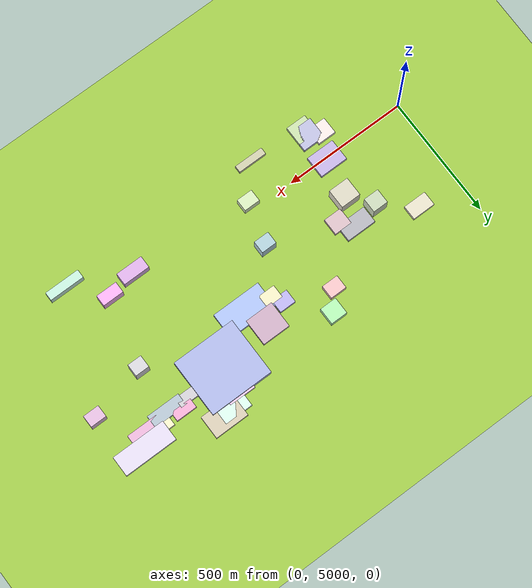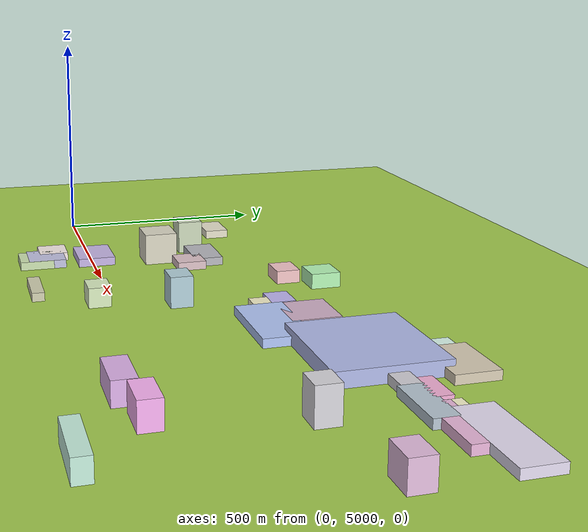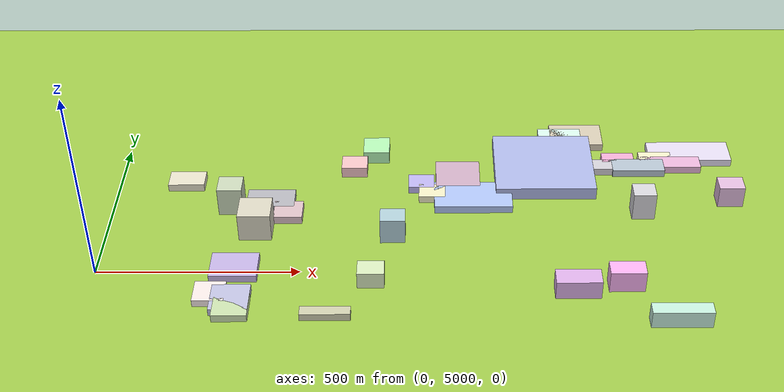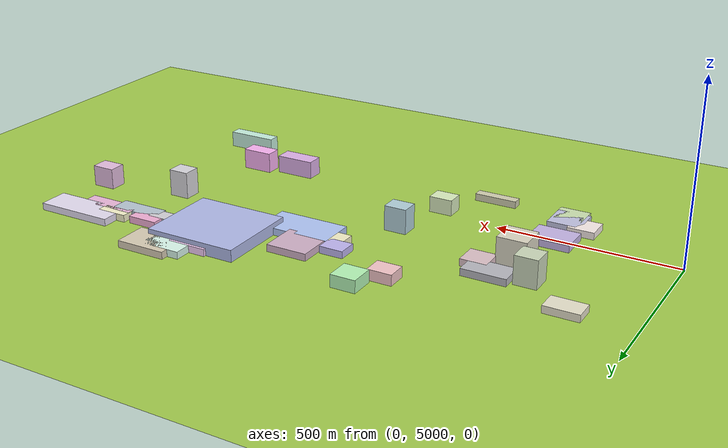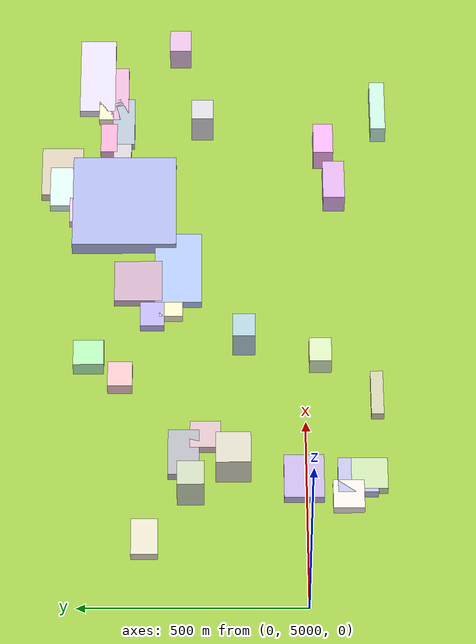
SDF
<sdf version="1.9">
 <world name="city_map">
  <model name="ground_plane">
   <static>1</static>
   <link name="link">
    <collision name="collision">
     <geometry><plane><normal>0 0 1</normal><size>11000 11000</size></plane></geometry>
    </collision>
    <visual name="visual">
     <geometry><plane><normal>0 0 1</normal><size>11000 11000</size></plane></geometry>
     <material>
      <ambient>0.551 0.712 0.210 1</ambient>
      <diffuse>0.651 0.812 0.310 1</diffuse>
      <specular>0.1 0.1 0.05 1</specular>
     </material>
    </visual>
   </link>
  </model>
  <model name="building_988046824">
   <static>1</static>
   <pose>1118.620609459311 5408.341910221481 16.624622849178063 0 0 0</pose>
   <link name="link">
    <collision name="collision">
     <geometry><box><size>261.7244489842803 237.71760000018105 33.24924569835613</size></box></geometry>
    </collision>
    <visual name="visual">
     <cast_shadows>false</cast_shadows>
     <geometry><box><size>261.7244489842803 237.71760000018105 33.24924569835613</size></box></geometry>
     <material>
      <ambient>0.604 0.640 0.826 1</ambient>
      <diffuse>0.704 0.740 0.926 1</diffuse>
      <specular>0.211 0.222 0.278 1</specular>
      <emissive>0.01 0.01 0.01 1</emissive>
     </material>
    </visual>
   </link>
  </model>
  <model name="building_383699546">
   <static>1</static>
   <pose>927.8993489632977 5284.29664269175 10.0 0 0 0</pose>
   <link name="link">
    <collision name="collision">
     <geometry><box><size>201.5623289126177 106.03830000012238 20</size></box></geometry>
    </collision>
    <visual name="visual">
     <cast_shadows>false</cast_shadows>
     <geometry><box><size>201.5623289126177 106.03830000012238 20</size></box></geometry>
     <material>
      <ambient>0.606 0.689 0.881 1</ambient>
      <diffuse>0.706 0.789 0.981 1</diffuse>
      <specular>0.212 0.237 0.294 1</specular>
      <emissive>0.01 0.01 0.01 1</emissive>
     </material>
    </visual>
   </link>
  </model>
  <model name="building_515084542">
   <static>1</static>
   <pose>1516.5815780573898 5474.953385485059 10.0 0 0 0</pose>
   <link name="link">
    <collision name="collision">
     <geometry><box><size>220.8233999999294 82.75419643831687 20</size></box></geometry>
    </collision>
    <visual name="visual">
     <cast_shadows>false</cast_shadows>
     <geometry><box><size>220.8233999999294 82.75419643831687 20</size></box></geometry>
     <material>
      <ambient>0.816 0.785 0.867 1</ambient>
      <diffuse>0.916 0.885 0.967 1</diffuse>
      <specular>0.275 0.265 0.290 1</specular>
      <emissive>0.01 0.01 0.01 1</emissive>
     </material>
    </visual>
   </link>
  </model>
  <model name="building_64888461">
   <static>1</static>
   <pose>1217.999465446837 5553.1395003354555 10.0 0 0 0</pose>
   <link name="link">
    <collision name="collision">
     <geometry><box><size>141.1476000002878 94.76810245106343 20</size></box></geometry>
    </collision>
    <visual name="visual">
     <cast_shadows>false</cast_shadows>
     <geometry><box><size>141.1476000002878 94.76810245106343 20</size></box></geometry>
     <material>
      <ambient>0.763 0.717 0.627 1</ambient>
      <diffuse>0.863 0.817 0.727 1</diffuse>
      <specular>0.259 0.245 0.218 1</specular>
      <emissive>0.01 0.01 0.01 1</emissive>
     </material>
    </visual>
   </link>
  </model>
  <model name="building_899360041">
   <static>1</static>
   <pose>889.5267928917383 5374.45685153867 10.0 0 0 0</pose>
   <link name="link">
    <collision name="collision">
     <geometry><box><size>115.60649999994155 108.24490099768522 20</size></box></geometry>
    </collision>
    <visual name="visual">
     <cast_shadows>false</cast_shadows>
     <geometry><box><size>115.60649999994155 108.24490099768522 20</size></box></geometry>
     <material>
      <ambient>0.729 0.605 0.692 1</ambient>
      <diffuse>0.829 0.705 0.792 1</diffuse>
      <specular>0.249 0.211 0.238 1</specular>
      <emissive>0.01 0.01 0.01 1</emissive>
     </material>
    </visual>
   </link>
  </model>
  <model name="building_698523160">
   <static>1</static>
   <pose>338.582515647285 5006.787697867238 10.0 0 0 0</pose>
   <link name="link">
    <collision name="collision">
     <geometry><box><size>116.1002728291283 87.97859999965851 20</size></box></geometry>
    </collision>
    <visual name="visual">
     <cast_shadows>false</cast_shadows>
     <geometry><box><size>116.1002728291283 87.97859999965851 20</size></box></geometry>
     <material>
      <ambient>0.686 0.622 0.814 1</ambient>
      <diffuse>0.786 0.722 0.914 1</diffuse>
      <specular>0.236 0.217 0.274 1</specular>
      <emissive>0.01 0.01 0.01 1</emissive>
     </material>
    </visual>
   </link>
  </model>
  <model name="building_870610111">
   <static>1</static>
   <pose>1172.8414720907956 5541.666942231685 10.0 0 0 0</pose>
   <link name="link">
    <collision name="collision">
     <geometry><box><size>116.150399999988 77.59167386466402 20</size></box></geometry>
    </collision>
    <visual name="visual">
     <cast_shadows>false</cast_shadows>
     <geometry><box><size>116.150399999988 77.59167386466402 20</size></box></geometry>
     <material>
      <ambient>0.776 0.894 0.845 1</ambient>
      <diffuse>0.876 0.994 0.945 1</diffuse>
      <specular>0.263 0.298 0.283 1</specular>
      <emissive>0.01 0.01 0.01 1</emissive>
     </material>
    </visual>
   </link>
  </model>
  <model name="building_709739822">
   <static>1</static>
   <pose>1121.7715492436378 5495.49829377158 10.0 0 0 0</pose>
   <link name="link">
    <collision name="collision">
     <geometry><box><size>110.14530000000633 78.11852953853968 20</size></box></geometry>
    </collision>
    <visual name="visual">
     <cast_shadows>false</cast_shadows>
     <geometry><box><size>110.14530000000633 78.11852953853968 20</size></box></geometry>
     <material>
      <ambient>0.882 0.732 0.898 1</ambient>
      <diffuse>0.982 0.832 0.998 1</diffuse>
      <specular>0.295 0.250 0.299 1</specular>
      <emissive>0.01 0.01 0.01 1</emissive>
     </material>
    </visual>
   </link>
  </model>
  <model name="building_130660668">
   <static>1</static>
   <pose>404.59170274582743 5270.571614620403 10.0 0 0 0</pose>
   <link name="link">
    <collision name="collision">
     <geometry><box><size>122.66524421167394 69.18630000009784 20</size></box></geometry>
    </collision>
    <visual name="visual">
     <cast_shadows>false</cast_shadows>
     <geometry><box><size>122.66524421167394 69.18630000009784 20</size></box></geometry>
     <material>
      <ambient>0.630 0.629 0.658 1</ambient>
      <diffuse>0.730 0.729 0.758 1</diffuse>
      <specular>0.219 0.219 0.227 1</specular>
      <emissive>0.01 0.01 0.01 1</emissive>
     </material>
    </visual>
   </link>
  </model>
  <model name="building_795768570">
   <static>1</static>
   <pose>341.0672039774285 4888.616009073335 10.0 0 0 0</pose>
   <link name="link">
    <collision name="collision">
     <geometry><box><size>92.79050602526395 88.10070000029668 20</size></box></geometry>
    </collision>
    <visual name="visual">
     <cast_shadows>false</cast_shadows>
     <geometry><box><size>92.79050602526395 88.10070000029668 20</size></box></geometry>
     <material>
      <ambient>0.671 0.675 0.799 1</ambient>
      <diffuse>0.771 0.775 0.899 1</diffuse>
      <specular>0.231 0.233 0.270 1</specular>
      <emissive>0.01 0.01 0.01 1</emissive>
     </material>
    </visual>
   </link>
  </model>
  <model name="building_860030820">
   <static>1</static>
   <pose>1459.8383465221416 5425.986307773478 10.0 0 0 0</pose>
   <link name="link">
    <collision name="collision">
     <geometry><box><size>160.56150000001423 48.00259607296831 20</size></box></geometry>
    </collision>
    <visual name="visual">
     <cast_shadows>false</cast_shadows>
     <geometry><box><size>160.56150000001423 48.00259607296831 20</size></box></geometry>
     <material>
      <ambient>0.834 0.633 0.772 1</ambient>
      <diffuse>0.934 0.733 0.872 1</diffuse>
      <specular>0.280 0.220 0.262 1</specular>
      <emissive>0.01 0.01 0.01 1</emissive>
     </material>
    </visual>
   </link>
  </model>
  <model name="building_67336968">
   <static>1</static>
   <pose>1372.4841355980489 5412.399711032709 10.0 0 0 0</pose>
   <link name="link">
    <collision name="collision">
     <geometry><box><size>138.32819999967683 50.74193809614689 20</size></box></geometry>
    </collision>
    <visual name="visual">
     <cast_shadows>false</cast_shadows>
     <geometry><box><size>138.32819999967683 50.74193809614689 20</size></box></geometry>
     <material>
      <ambient>0.629 0.687 0.736 1</ambient>
      <diffuse>0.729 0.787 0.836 1</diffuse>
      <specular>0.219 0.236 0.251 1</specular>
      <emissive>0.01 0.01 0.01 1</emissive>
     </material>
    </visual>
   </link>
  </model>
  <model name="building_441883566">
   <static>1</static>
   <pose>345.8690614856086 4863.663867533455 10.0 0 0 0</pose>
   <link name="link">
    <collision name="collision">
     <geometry><box><size>83.92470254477325 79.85340000013963 20</size></box></geometry>
    </collision>
    <visual name="visual">
     <cast_shadows>false</cast_shadows>
     <geometry><box><size>83.92470254477325 79.85340000013963 20</size></box></geometry>
     <material>
      <ambient>0.713 0.799 0.603 1</ambient>
      <diffuse>0.813 0.899 0.703 1</diffuse>
      <specular>0.244 0.270 0.211 1</specular>
      <emissive>0.01 0.01 0.01 1</emissive>
     </material>
    </visual>
   </link>
  </model>
  <model name="building_497718467">
   <static>1</static>
   <pose>377.0329836447336 5161.892737942608 37.13290606609011 0 0 0</pose>
   <link name="link">
    <collision name="collision">
     <geometry><box><size>82.19930396104428 77.55570000010437 74.26581213218022</size></box></geometry>
    </collision>
    <visual name="visual">
     <cast_shadows>false</cast_shadows>
     <geometry><box><size>82.19930396104428 77.55570000010437 74.26581213218022</size></box></geometry>
     <material>
      <ambient>0.775 0.757 0.681 1</ambient>
      <diffuse>0.875 0.857 0.781 1</diffuse>
      <specular>0.262 0.257 0.234 1</specular>
      <emissive>0.01 0.01 0.01 1</emissive>
     </material>
    </visual>
   </link>
  </model>
  <model name="building_162354768">
   <static>1</static>
   <pose>176.04377472699065 5355.333772393632 10.0 0 0 0</pose>
   <link name="link">
    <collision name="collision">
     <geometry><box><size>94.06140000054819 58.31226725260028 20</size></box></geometry>
    </collision>
    <visual name="visual">
     <cast_shadows>false</cast_shadows>
     <geometry><box><size>94.06140000054819 58.31226725260028 20</size></box></geometry>
     <material>
      <ambient>0.820 0.801 0.711 1</ambient>
      <diffuse>0.920 0.901 0.811 1</diffuse>
      <specular>0.276 0.270 0.243 1</specular>
      <emissive>0.01 0.01 0.01 1</emissive>
     </material>
    </visual>
   </link>
  </model>
  <model name="building_765430588">
   <static>1</static>
   <pose>1168.0821147768265 4926.57829271306 25.145361138423006 0 0 0</pose>
   <link name="link">
    <collision name="collision">
     <geometry><box><size>110.00905816763432 49.50600000041305 50.29072227684601</size></box></geometry>
    </collision>
    <visual name="visual">
     <cast_shadows>false</cast_shadows>
     <geometry><box><size>110.00905816763432 49.50600000041305 50.29072227684601</size></box></geometry>
     <material>
      <ambient>0.786 0.610 0.828 1</ambient>
      <diffuse>0.886 0.710 0.928 1</diffuse>
      <specular>0.266 0.213 0.279 1</specular>
      <emissive>0.01 0.01 0.01 1</emissive>
     </material>
    </visual>
   </link>
  </model>
  <model name="building_953731551">
   <static>1</static>
   <pose>290.03977158163474 4909.938748206682 10.0 0 0 0</pose>
   <link name="link">
    <collision name="collision">
     <geometry><box><size>75.24009432819072 68.10959999934596 20</size></box></geometry>
    </collision>
    <visual name="visual">
     <cast_shadows>false</cast_shadows>
     <geometry><box><size>75.24009432819072 68.10959999934596 20</size></box></geometry>
     <material>
      <ambient>0.886 0.836 0.820 1</ambient>
      <diffuse>0.986 0.936 0.920 1</diffuse>
      <specular>0.296 0.281 0.276 1</specular>
      <emissive>0.01 0.01 0.01 1</emissive>
     </material>
    </visual>
   </link>
  </model>
  <model name="building_42363038">
   <static>1</static>
   <pose>1399.0134161133158 4819.778039121408 22.79812197609635 0 0 0</pose>
   <link name="link">
    <collision name="collision">
     <geometry><box><size>144.45749478489194 34.60980000063785 45.5962439521927</size></box></geometry>
    </collision>
    <visual name="visual">
     <cast_shadows>false</cast_shadows>
     <geometry><box><size>144.45749478489194 34.60980000063785 45.5962439521927</size></box></geometry>
     <material>
      <ambient>0.694 0.856 0.785 1</ambient>
      <diffuse>0.794 0.956 0.885 1</diffuse>
      <specular>0.238 0.287 0.266 1</specular>
      <emissive>0.01 0.01 0.01 1</emissive>
     </material>
    </visual>
   </link>
  </model>
  <model name="building_208458895">
   <static>1</static>
   <pose>453.05720298131257 5222.9449514660255 10.0 0 0 0</pose>
   <link name="link">
    <collision name="collision">
     <geometry><box><size>73.09653862622002 67.71000000019711 20</size></box></geometry>
    </collision>
    <visual name="visual">
     <cast_shadows>false</cast_shadows>
     <geometry><box><size>73.09653862622002 67.71000000019711 20</size></box></geometry>
     <material>
      <ambient>0.779 0.670 0.694 1</ambient>
      <diffuse>0.879 0.770 0.794 1</diffuse>
      <specular>0.264 0.231 0.238 1</specular>
      <emissive>0.01 0.01 0.01 1</emissive>
     </material>
    </visual>
   </link>
  </model>
  <model name="building_586630447">
   <static>1</static>
   <pose>671.8520986825114 5483.885228745046 17.488870907383752 0 0 0</pose>
   <link name="link">
    <collision name="collision">
     <geometry><box><size>69.21316812791535 68.45370000021234 34.977741814767505</size></box></geometry>
    </collision>
    <visual name="visual">
     <cast_shadows>false</cast_shadows>
     <geometry><box><size>69.21316812791535 68.45370000021234 34.977741814767505</size></box></geometry>
     <material>
      <ambient>0.625 0.882 0.630 1</ambient>
      <diffuse>0.725 0.982 0.730 1</diffuse>
      <specular>0.218 0.295 0.219 1</specular>
      <emissive>0.01 0.01 0.01 1</emissive>
     </material>
    </visual>
   </link>
  </model>
  <model name="building_207016166">
   <static>1</static>
   <pose>1286.7406115857252 4948.930546507035 29.073628911215007 0 0 0</pose>
   <link name="link">
    <collision name="collision">
     <geometry><box><size>86.79774569603356 45.42119999999983 58.147257822430014</size></box></geometry>
    </collision>
    <visual name="visual">
     <cast_shadows>false</cast_shadows>
     <geometry><box><size>86.79774569603356 45.42119999999983 58.147257822430014</size></box></geometry>
     <material>
      <ambient>0.897 0.615 0.868 1</ambient>
      <diffuse>0.997 0.715 0.968 1</diffuse>
      <specular>0.299 0.214 0.290 1</specular>
      <emissive>0.01 0.01 0.01 1</emissive>
     </material>
    </visual>
   </link>
  </model>
  <model name="building_974671310">
   <static>1</static>
   <pose>1190.6589851578506 5441.704482118197 13.153970432363135 0 0 0</pose>
   <link name="link">
    <collision name="collision">
     <geometry><box><size>72.14187113389885 54.31229999979337 26.30794086472627</size></box></geometry>
    </collision>
    <visual name="visual">
     <cast_shadows>false</cast_shadows>
     <geometry><box><size>72.14187113389885 54.31229999979337 26.30794086472627</size></box></geometry>
     <material>
      <ambient>0.788 0.886 0.684 1</ambient>
      <diffuse>0.888 0.986 0.784 1</diffuse>
      <specular>0.266 0.296 0.235 1</specular>
      <emissive>0.01 0.01 0.01 1</emissive>
     </material>
    </visual>
   </link>
  </model>
  <model name="building_588401849">
   <static>1</static>
   <pose>615.4133878054527 5413.048173680293 15.023179184529605 0 0 0</pose>
   <link name="link">
    <collision name="collision">
     <geometry><box><size>67.83796639623662 55.07820000006802 30.04635836905921</size></box></geometry>
    </collision>
    <visual name="visual">
     <cast_shadows>false</cast_shadows>
     <geometry><box><size>67.83796639623662 55.07820000006802 30.04635836905921</size></box></geometry>
     <material>
      <ambient>0.875 0.690 0.699 1</ambient>
      <diffuse>0.975 0.790 0.799 1</diffuse>
      <specular>0.292 0.237 0.240 1</specular>
      <emissive>0.01 0.01 0.01 1</emissive>
     </material>
    </visual>
   </link>
  </model>
  <model name="building_681493564">
   <static>1</static>
   <pose>304.95699193738324 5255.065116746108 39.126499218323694 0 0 0</pose>
   <link name="link">
    <collision name="collision">
     <geometry><box><size>62.604000000469284 59.35256390563622 78.25299843664739</size></box></geometry>
    </collision>
    <visual name="visual">
     <cast_shadows>false</cast_shadows>
     <geometry><box><size>62.604000000469284 59.35256390563622 78.25299843664739</size></box></geometry>
     <material>
      <ambient>0.711 0.762 0.647 1</ambient>
      <diffuse>0.811 0.862 0.747 1</diffuse>
      <specular>0.243 0.259 0.224 1</specular>
      <emissive>0.01 0.01 0.01 1</emissive>
     </material>
    </visual>
   </link>
  </model>
  <model name="building_637834810">
   <static>1</static>
   <pose>793.4972496970819 5342.466795597012 10.0 0 0 0</pose>
   <link name="link">
    <collision name="collision">
     <geometry><box><size>67.34646133003831 54.44549999977255 20</size></box></geometry>
    </collision>
    <visual name="visual">
     <cast_shadows>false</cast_shadows>
     <geometry><box><size>67.34646133003831 54.44549999977255 20</size></box></geometry>
     <material>
      <ambient>0.662 0.627 0.858 1</ambient>
      <diffuse>0.762 0.727 0.958 1</diffuse>
      <specular>0.228 0.218 0.287 1</specular>
      <emissive>0.01 0.01 0.01 1</emissive>
     </material>
    </visual>
   </link>
  </model>
  <model name="building_690943864">
   <static>1</static>
   <pose>821.2724960849228 5300.526429925299 10.0 0 0 0</pose>
   <link name="link">
    <collision name="collision">
     <geometry><box><size>68.66460000031083 53.03692718957246 20</size></box></geometry>
    </collision>
    <visual name="visual">
     <cast_shadows>false</cast_shadows>
     <geometry><box><size>68.66460000031083 53.03692718957246 20</size></box></geometry>
     <material>
      <ambient>0.873 0.854 0.698 1</ambient>
      <diffuse>0.973 0.954 0.798 1</diffuse>
      <specular>0.292 0.286 0.240 1</specular>
      <emissive>0.01 0.01 0.01 1</emissive>
     </material>
    </visual>
   </link>
  </model>
  <model name="building_159896136">
   <static>1</static>
   <pose>1281.2250395785456 5415.004233168637 10.0 0 0 0</pose>
   <link name="link">
    <collision name="collision">
     <geometry><box><size>84.92610000026701 41.35051142258696 20</size></box></geometry>
    </collision>
    <visual name="visual">
     <cast_shadows>false</cast_shadows>
     <geometry><box><size>84.92610000026701 41.35051142258696 20</size></box></geometry>
     <material>
      <ambient>0.742 0.731 0.756 1</ambient>
      <diffuse>0.842 0.831 0.856 1</diffuse>
      <specular>0.252 0.249 0.257 1</specular>
      <emissive>0.01 0.01 0.01 1</emissive>
     </material>
    </visual>
   </link>
  </model>
  <model name="building_806271864">
   <static>1</static>
   <pose>569.068379132902 4841.123173303952 10.0 0 0 0</pose>
   <link name="link">
    <collision name="collision">
     <geometry><box><size>120.06870000003289 27.83999485152836 20</size></box></geometry>
    </collision>
    <visual name="visual">
     <cast_shadows>false</cast_shadows>
     <geometry><box><size>120.06870000003289 27.83999485152836 20</size></box></geometry>
     <material>
      <ambient>0.731 0.725 0.603 1</ambient>
      <diffuse>0.831 0.825 0.703 1</diffuse>
      <specular>0.249 0.248 0.211 1</specular>
      <emissive>0.01 0.01 0.01 1</emissive>
     </material>
    </visual>
   </link>
  </model>
  <model name="building_776386619">
   <static>1</static>
   <pose>672.3325039971448 4965.75230033717 22.30786636216813 0 0 0</pose>
   <link name="link">
    <collision name="collision">
     <geometry><box><size>65.60100000000091 49.66025763844844 44.61573272433626</size></box></geometry>
    </collision>
    <visual name="visual">
     <cast_shadows>false</cast_shadows>
     <geometry><box><size>65.60100000000091 49.66025763844844 44.61573272433626</size></box></geometry>
     <material>
      <ambient>0.770 0.844 0.665 1</ambient>
      <diffuse>0.870 0.944 0.765 1</diffuse>
      <specular>0.261 0.283 0.229 1</specular>
      <emissive>0.01 0.01 0.01 1</emissive>
     </material>
    </visual>
   </link>
  </model>
  <model name="building_811488060">
   <static>1</static>
   <pose>1321.716616193569 5446.741575776961 10.0 0 0 0</pose>
   <link name="link">
    <collision name="collision">
     <geometry><box><size>85.33680000033428 37.99039499245293 20</size></box></geometry>
    </collision>
    <visual name="visual">
     <cast_shadows>false</cast_shadows>
     <geometry><box><size>85.33680000033428 37.99039499245293 20</size></box></geometry>
     <material>
      <ambient>0.868 0.601 0.754 1</ambient>
      <diffuse>0.968 0.701 0.854 1</diffuse>
      <specular>0.290 0.210 0.256 1</specular>
      <emissive>0.01 0.01 0.01 1</emissive>
     </material>
    </visual>
   </link>
  </model>
  <model name="building_870464082">
   <static>1</static>
   <pose>1592.679283435636 5280.239569649057 29.59981382467599 0 0 0</pose>
   <link name="link">
    <collision name="collision">
     <geometry><box><size>65.6675999999905 48.759700566737685 59.19962764935198</size></box></geometry>
    </collision>
    <visual name="visual">
     <cast_shadows>false</cast_shadows>
     <geometry><box><size>65.6675999999905 48.759700566737685 59.19962764935198</size></box></geometry>
     <material>
      <ambient>0.810 0.659 0.791 1</ambient>
      <diffuse>0.910 0.759 0.891 1</diffuse>
      <specular>0.273 0.228 0.267 1</specular>
      <emissive>0.01 0.01 0.01 1</emissive>
     </material>
    </visual>
   </link>
  </model>
  <model name="building_558608247">
   <static>1</static>
   <pose>721.8876066421963 5135.9467745868615 34.95773934380155 0 0 0</pose>
   <link name="link">
    <collision name="collision">
     <geometry><box><size>63.01103569274874 50.11649999966039 69.9154786876031</size></box></geometry>
    </collision>
    <visual name="visual">
     <cast_shadows>false</cast_shadows>
     <geometry><box><size>63.01103569274874 50.11649999966039 69.9154786876031</size></box></geometry>
     <material>
      <ambient>0.612 0.730 0.768 1</ambient>
      <diffuse>0.712 0.830 0.868 1</diffuse>
      <specular>0.214 0.249 0.260 1</specular>
      <emissive>0.01 0.01 0.01 1</emissive>
     </material>
    </visual>
   </link>
  </model>
  <model name="building_538449291">
   <static>1</static>
   <pose>1360.7978340458433 5228.807991548186 38.06424754876046 0 0 0</pose>
   <link name="link">
    <collision name="collision">
     <geometry><box><size>57.753299999781404 50.109610841877405 76.12849509752093</size></box></geometry>
    </collision>
    <visual name="visual">
     <cast_shadows>false</cast_shadows>
     <geometry><box><size>57.753299999781404 50.109610841877405 76.12849509752093</size></box></geometry>
     <material>
      <ambient>0.764 0.759 0.781 1</ambient>
      <diffuse>0.864 0.859 0.881 1</diffuse>
      <specular>0.259 0.258 0.264 1</specular>
      <emissive>0.01 0.01 0.01 1</emissive>
     </material>
    </visual>
   </link>
  </model>
  <model name="building_399956558">
   <static>1</static>
   <pose>1422.299939169811 5454.155629886911 10.0 0 0 0</pose>
   <link name="link">
    <collision name="collision">
     <geometry><box><size>86.19150000006925 33.078754543993846 20</size></box></geometry>
    </collision>
    <visual name="visual">
     <cast_shadows>false</cast_shadows>
     <geometry><box><size>86.19150000006925 33.078754543993846 20</size></box></geometry>
     <material>
      <ambient>0.886 0.871 0.712 1</ambient>
      <diffuse>0.986 0.971 0.812 1</diffuse>
      <specular>0.296 0.291 0.244 1</specular>
      <emissive>0.01 0.01 0.01 1</emissive>
     </material>
    </visual>
   </link>
  </model>
 </world>
</sdf>
